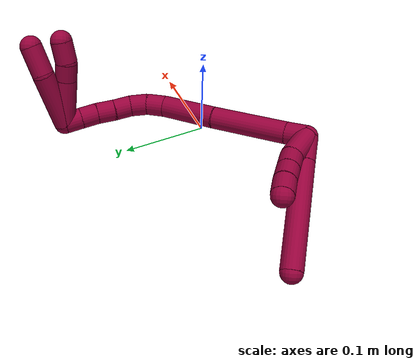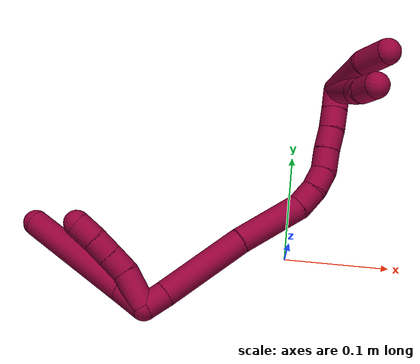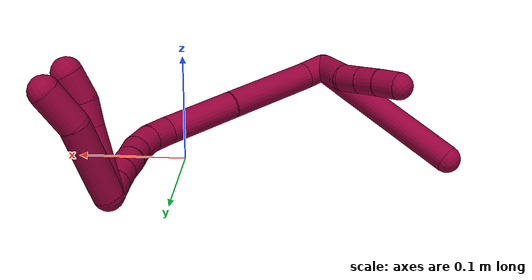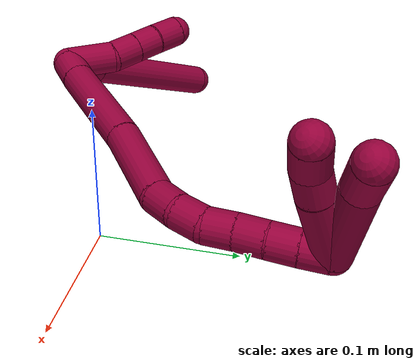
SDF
<sdf version="1.7">
 <world name="default">
  <model name="8">
   <static>0</static>
   <link name="8">
    <collision name="collision-cylinder-e_1_2_8">
     <pose>-0.003197 0.004297 -0.013693 -2.83755 -0.21919 1.24571</pose>
     <geometry><cylinder><radius>0.0125</radius><length>0.029407</length></cylinder></geometry>
     <surface>
      <friction><ode><mu>1.16</mu><mu2>1.16</mu2><slip1>0</slip1><slip2>0</slip2></ode></friction>
      <contact><ode><kp>1e+06</kp><kd>1</kd><max_vel>0</max_vel><min_depth>0.001</min_depth></ode></contact>
     </surface>
    </collision>
    <visual name="visual-cylinder-e_1_2_8">
     <pose>-0.003197 0.004297 -0.013693 -2.83755 -0.21919 1.24571</pose>
     <geometry><cylinder><radius>0.0125</radius><length>0.029407</length></cylinder></geometry>
     <material><ambient>0.584314 0 0.227451 1</ambient></material>
    </visual>
    <collision name="collision-cylinder-e_2_8_6">
     <pose>-0.020014 0.025833 -0.083538 -2.84371 -0.227848 1.30294</pose>
     <geometry><cylinder><radius>0.0125</radius><length>0.120593</length></cylinder></geometry>
     <surface>
      <friction><ode><mu>1.16</mu><mu2>1.16</mu2><slip1>0</slip1><slip2>0</slip2></ode></friction>
      <contact><ode><kp>1e+06</kp><kd>1</kd><max_vel>0</max_vel><min_depth>0.001</min_depth></ode></contact>
     </surface>
    </collision>
    <visual name="visual-cylinder-e_2_8_6">
     <pose>-0.020014 0.025833 -0.083538 -2.84371 -0.227848 1.30294</pose>
     <geometry><cylinder><radius>0.0125</radius><length>0.120593</length></cylinder></geometry>
     <material><ambient>0.584314 0 0.227451 1</ambient></material>
    </visual>
    <collision name="collision-cylinder-e_1_2_9">
     <pose>-0.003566 0.013713 -0.011443 -2.26622 -0.197069 0.416374</pose>
     <geometry><cylinder><radius>0.0125</radius><length>0.036425</length></cylinder></geometry>
     <surface>
      <friction><ode><mu>1.16</mu><mu2>1.16</mu2><slip1>0</slip1><slip2>0</slip2></ode></friction>
      <contact><ode><kp>1e+06</kp><kd>1</kd><max_vel>0</max_vel><min_depth>0.001</min_depth></ode></contact>
     </surface>
    </collision>
    <visual name="visual-cylinder-e_1_2_9">
     <pose>-0.003566 0.013713 -0.011443 -2.26622 -0.197069 0.416374</pose>
     <geometry><cylinder><radius>0.0125</radius><length>0.036425</length></cylinder></geometry>
     <material><ambient>0.584314 0 0.227451 1</ambient></material>
    </visual>
    <collision name="collision-cylinder-e_2_9_10">
     <pose>-0.012201 0.034218 -0.029435 -2.33789 -0.492937 1.06902</pose>
     <geometry><cylinder><radius>0.0125</radius><length>0.021423</length></cylinder></geometry>
     <surface>
      <friction><ode><mu>1.16</mu><mu2>1.16</mu2><slip1>0</slip1><slip2>0</slip2></ode></friction>
      <contact><ode><kp>1e+06</kp><kd>1</kd><max_vel>0</max_vel><min_depth>0.001</min_depth></ode></contact>
     </surface>
    </collision>
    <visual name="visual-cylinder-e_2_9_10">
     <pose>-0.012201 0.034218 -0.029435 -2.33789 -0.492937 1.06902</pose>
     <geometry><cylinder><radius>0.0125</radius><length>0.021423</length></cylinder></geometry>
     <material><ambient>0.584314 0 0.227451 1</ambient></material>
    </visual>
    <collision name="collision-cylinder-e_3_10_11">
     <pose>-0.022107 0.047388 -0.042108 -2.33599 -0.500666 1.08097</pose>
     <geometry><cylinder><radius>0.0125</radius><length>0.020155</length></cylinder></geometry>
     <surface>
      <friction><ode><mu>1.16</mu><mu2>1.16</mu2><slip1>0</slip1><slip2>0</slip2></ode></friction>
      <contact><ode><kp>1e+06</kp><kd>1</kd><max_vel>0</max_vel><min_depth>0.001</min_depth></ode></contact>
     </surface>
    </collision>
    <visual name="visual-cylinder-e_3_10_11">
     <pose>-0.022107 0.047388 -0.042108 -2.33599 -0.500666 1.08097</pose>
     <geometry><cylinder><radius>0.0125</radius><length>0.020155</length></cylinder></geometry>
     <material><ambient>0.584314 0 0.227451 1</ambient></material>
    </visual>
    <collision name="collision-cylinder-e_4_11_5">
     <pose>-0.032385 0.05995 -0.055519 -2.43781 -0.517462 1.24912</pose>
     <geometry><cylinder><radius>0.0125</radius><length>0.021998</length></cylinder></geometry>
     <surface>
      <friction><ode><mu>1.16</mu><mu2>1.16</mu2><slip1>0</slip1><slip2>0</slip2></ode></friction>
      <contact><ode><kp>1e+06</kp><kd>1</kd><max_vel>0</max_vel><min_depth>0.001</min_depth></ode></contact>
     </surface>
    </collision>
    <visual name="visual-cylinder-e_4_11_5">
     <pose>-0.032385 0.05995 -0.055519 -2.43781 -0.517462 1.24912</pose>
     <geometry><cylinder><radius>0.0125</radius><length>0.021998</length></cylinder></geometry>
     <material><ambient>0.584314 0 0.227451 1</ambient></material>
    </visual>
    <collision name="collision-cylinder-e_1_2_12">
     <pose>0.009997 0.005583 0.001539 -1.30186 1.04578 -0.827393</pose>
     <geometry><cylinder><radius>0.0125</radius><length>0.023107</length></cylinder></geometry>
     <surface>
      <friction><ode><mu>1.16</mu><mu2>1.16</mu2><slip1>0</slip1><slip2>0</slip2></ode></friction>
      <contact><ode><kp>1e+06</kp><kd>1</kd><max_vel>0</max_vel><min_depth>0.001</min_depth></ode></contact>
     </surface>
    </collision>
    <visual name="visual-cylinder-e_1_2_12">
     <pose>0.009997 0.005583 0.001539 -1.30186 1.04578 -0.827393</pose>
     <geometry><cylinder><radius>0.0125</radius><length>0.023107</length></cylinder></geometry>
     <material><ambient>0.584314 0 0.227451 1</ambient></material>
    </visual>
    <collision name="collision-cylinder-e_2_12_13">
     <pose>0.055709 0.034657 0.009947 -1.28631 0.969987 -0.752284</pose>
     <geometry><cylinder><radius>0.0125</radius><length>0.086592</length></cylinder></geometry>
     <surface>
      <friction><ode><mu>1.16</mu><mu2>1.16</mu2><slip1>0</slip1><slip2>0</slip2></ode></friction>
      <contact><ode><kp>1e+06</kp><kd>1</kd><max_vel>0</max_vel><min_depth>0.001</min_depth></ode></contact>
     </surface>
    </collision>
    <visual name="visual-cylinder-e_2_12_13">
     <pose>0.055709 0.034657 0.009947 -1.28631 0.969987 -0.752284</pose>
     <geometry><cylinder><radius>0.0125</radius><length>0.086592</length></cylinder></geometry>
     <material><ambient>0.584314 0 0.227451 1</ambient></material>
    </visual>
    <collision name="collision-cylinder-e_3_13_14">
     <pose>0.12027 0.073487 0.022724 -1.20314 1.05291 -0.759177</pose>
     <geometry><cylinder><radius>0.0125</radius><length>0.066403</length></cylinder></geometry>
     <surface>
      <friction><ode><mu>1.16</mu><mu2>1.16</mu2><slip1>0</slip1><slip2>0</slip2></ode></friction>
      <contact><ode><kp>1e+06</kp><kd>1</kd><max_vel>0</max_vel><min_depth>0.001</min_depth></ode></contact>
     </surface>
    </collision>
    <visual name="visual-cylinder-e_3_13_14">
     <pose>0.12027 0.073487 0.022724 -1.20314 1.05291 -0.759177</pose>
     <geometry><cylinder><radius>0.0125</radius><length>0.066403</length></cylinder></geometry>
     <material><ambient>0.584314 0 0.227451 1</ambient></material>
    </visual>
    <collision name="collision-cylinder-e_4_14_15">
     <pose>0.156761 0.096675 0.029342 -1.48059 0.77 -0.709154</pose>
     <geometry><cylinder><radius>0.0125</radius><length>0.021959</length></cylinder></geometry>
     <surface>
      <friction><ode><mu>1.16</mu><mu2>1.16</mu2><slip1>0</slip1><slip2>0</slip2></ode></friction>
      <contact><ode><kp>1e+06</kp><kd>1</kd><max_vel>0</max_vel><min_depth>0.001</min_depth></ode></contact>
     </surface>
    </collision>
    <visual name="visual-cylinder-e_4_14_15">
     <pose>0.156761 0.096675 0.029342 -1.48059 0.77 -0.709154</pose>
     <geometry><cylinder><radius>0.0125</radius><length>0.021959</length></cylinder></geometry>
     <material><ambient>0.584314 0 0.227451 1</ambient></material>
    </visual>
    <collision name="collision-cylinder-e_5_15_16">
     <pose>0.170682 0.112507 0.028423 -1.77214 0.656543 -0.790378</pose>
     <geometry><cylinder><radius>0.0125</radius><length>0.020569</length></cylinder></geometry>
     <surface>
      <friction><ode><mu>1.16</mu><mu2>1.16</mu2><slip1>0</slip1><slip2>0</slip2></ode></friction>
      <contact><ode><kp>1e+06</kp><kd>1</kd><max_vel>0</max_vel><min_depth>0.001</min_depth></ode></contact>
     </surface>
    </collision>
    <visual name="visual-cylinder-e_5_15_16">
     <pose>0.170682 0.112507 0.028423 -1.77214 0.656543 -0.790378</pose>
     <geometry><cylinder><radius>0.0125</radius><length>0.020569</length></cylinder></geometry>
     <material><ambient>0.584314 0 0.227451 1</ambient></material>
    </visual>
    <collision name="collision-cylinder-e_6_16_17">
     <pose>0.180483 0.129523 0.023409 -1.92924 0.350266 -0.499816</pose>
     <geometry><cylinder><radius>0.0125</radius><length>0.020542</length></cylinder></geometry>
     <surface>
      <friction><ode><mu>1.16</mu><mu2>1.16</mu2><slip1>0</slip1><slip2>0</slip2></ode></friction>
      <contact><ode><kp>1e+06</kp><kd>1</kd><max_vel>0</max_vel><min_depth>0.001</min_depth></ode></contact>
     </surface>
    </collision>
    <visual name="visual-cylinder-e_6_16_17">
     <pose>0.180483 0.129523 0.023409 -1.92924 0.350266 -0.499816</pose>
     <geometry><cylinder><radius>0.0125</radius><length>0.020542</length></cylinder></geometry>
     <material><ambient>0.584314 0 0.227451 1</ambient></material>
    </visual>
    <collision name="collision-cylinder-e_7_17_18">
     <pose>0.188202 0.147582 0.017259 -1.86815 0.418158 -0.558863</pose>
     <geometry><cylinder><radius>0.0125</radius><length>0.020658</length></cylinder></geometry>
     <surface>
      <friction><ode><mu>1.16</mu><mu2>1.16</mu2><slip1>0</slip1><slip2>0</slip2></ode></friction>
      <contact><ode><kp>1e+06</kp><kd>1</kd><max_vel>0</max_vel><min_depth>0.001</min_depth></ode></contact>
     </surface>
    </collision>
    <visual name="visual-cylinder-e_7_17_18">
     <pose>0.188202 0.147582 0.017259 -1.86815 0.418158 -0.558863</pose>
     <geometry><cylinder><radius>0.0125</radius><length>0.020658</length></cylinder></geometry>
     <material><ambient>0.584314 0 0.227451 1</ambient></material>
    </visual>
    <collision name="collision-cylinder-e_8_18_19">
     <pose>0.196095 0.165182 0.010882 -1.96937 0.378285 -0.561427</pose>
     <geometry><cylinder><radius>0.0125</radius><length>0.020025</length></cylinder></geometry>
     <surface>
      <friction><ode><mu>1.16</mu><mu2>1.16</mu2><slip1>0</slip1><slip2>0</slip2></ode></friction>
      <contact><ode><kp>1e+06</kp><kd>1</kd><max_vel>0</max_vel><min_depth>0.001</min_depth></ode></contact>
     </surface>
    </collision>
    <visual name="visual-cylinder-e_8_18_19">
     <pose>0.196095 0.165182 0.010882 -1.96937 0.378285 -0.561427</pose>
     <geometry><cylinder><radius>0.0125</radius><length>0.020025</length></cylinder></geometry>
     <material><ambient>0.584314 0 0.227451 1</ambient></material>
    </visual>
    <collision name="collision-cylinder-e_9_19_1">
     <pose>0.203172 0.182488 0.003553 -1.97337 0.342118 -0.511203</pose>
     <geometry><cylinder><radius>0.0125</radius><length>0.020146</length></cylinder></geometry>
     <surface>
      <friction><ode><mu>1.16</mu><mu2>1.16</mu2><slip1>0</slip1><slip2>0</slip2></ode></friction>
      <contact><ode><kp>1e+06</kp><kd>1</kd><max_vel>0</max_vel><min_depth>0.001</min_depth></ode></contact>
     </surface>
    </collision>
    <visual name="visual-cylinder-e_9_19_1">
     <pose>0.203172 0.182488 0.003553 -1.97337 0.342118 -0.511203</pose>
     <geometry><cylinder><radius>0.0125</radius><length>0.020146</length></cylinder></geometry>
     <material><ambient>0.584314 0 0.227451 1</ambient></material>
    </visual>
    <collision name="collision-cylinder-e_1_1_20">
     <pose>0.196317 0.19693 0.024401 -0.228453 -0.385501 0.044775</pose>
     <geometry><cylinder><radius>0.0125</radius><length>0.054435</length></cylinder></geometry>
     <surface>
      <friction><ode><mu>1.16</mu><mu2>1.16</mu2><slip1>0</slip1><slip2>0</slip2></ode></friction>
      <contact><ode><kp>1e+06</kp><kd>1</kd><max_vel>0</max_vel><min_depth>0.001</min_depth></ode></contact>
     </surface>
    </collision>
    <visual name="visual-cylinder-e_1_1_20">
     <pose>0.196317 0.19693 0.024401 -0.228453 -0.385501 0.044775</pose>
     <geometry><cylinder><radius>0.0125</radius><length>0.054435</length></cylinder></geometry>
     <material><ambient>0.584314 0 0.227451 1</ambient></material>
    </visual>
    <collision name="collision-cylinder-e_2_20_21">
     <pose>0.181631 0.205256 0.057895 -0.284801 -0.44617 0.065028</pose>
     <geometry><cylinder><radius>0.0125</radius><length>0.020629</length></cylinder></geometry>
     <surface>
      <friction><ode><mu>1.16</mu><mu2>1.16</mu2><slip1>0</slip1><slip2>0</slip2></ode></friction>
      <contact><ode><kp>1e+06</kp><kd>1</kd><max_vel>0</max_vel><min_depth>0.001</min_depth></ode></contact>
     </surface>
    </collision>
    <visual name="visual-cylinder-e_2_20_21">
     <pose>0.181631 0.205256 0.057895 -0.284801 -0.44617 0.065028</pose>
     <geometry><cylinder><radius>0.0125</radius><length>0.020629</length></cylinder></geometry>
     <material><ambient>0.584314 0 0.227451 1</ambient></material>
    </visual>
    <collision name="collision-cylinder-e_3_21_4">
     <pose>0.174912 0.212941 0.077987 -0.426431 -0.18293 0.039711</pose>
     <geometry><cylinder><radius>0.0125</radius><length>0.024936</length></cylinder></geometry>
     <surface>
      <friction><ode><mu>1.16</mu><mu2>1.16</mu2><slip1>0</slip1><slip2>0</slip2></ode></friction>
      <contact><ode><kp>1e+06</kp><kd>1</kd><max_vel>0</max_vel><min_depth>0.001</min_depth></ode></contact>
     </surface>
    </collision>
    <visual name="visual-cylinder-e_3_21_4">
     <pose>0.174912 0.212941 0.077987 -0.426431 -0.18293 0.039711</pose>
     <geometry><cylinder><radius>0.0125</radius><length>0.024936</length></cylinder></geometry>
     <material><ambient>0.584314 0 0.227451 1</ambient></material>
    </visual>
    <collision name="collision-cylinder-e_1_1_22">
     <pose>0.198131 0.210371 0.025426 -0.6425 -0.257579 0.08614</pose>
     <geometry><cylinder><radius>0.0125</radius><length>0.06611</length></cylinder></geometry>
     <surface>
      <friction><ode><mu>1.16</mu><mu2>1.16</mu2><slip1>0</slip1><slip2>0</slip2></ode></friction>
      <contact><ode><kp>1e+06</kp><kd>1</kd><max_vel>0</max_vel><min_depth>0.001</min_depth></ode></contact>
     </surface>
    </collision>
    <visual name="visual-cylinder-e_1_1_22">
     <pose>0.198131 0.210371 0.025426 -0.6425 -0.257579 0.08614</pose>
     <geometry><cylinder><radius>0.0125</radius><length>0.06611</length></cylinder></geometry>
     <material><ambient>0.584314 0 0.227451 1</ambient></material>
    </visual>
    <collision name="collision-cylinder-e_2_22_3">
     <pose>0.189936 0.237818 0.065792 -0.51148 0.013311 -0.00348</pose>
     <geometry><cylinder><radius>0.0125</radius><length>0.03389</length></cylinder></geometry>
     <surface>
      <friction><ode><mu>1.16</mu><mu2>1.16</mu2><slip1>0</slip1><slip2>0</slip2></ode></friction>
      <contact><ode><kp>1e+06</kp><kd>1</kd><max_vel>0</max_vel><min_depth>0.001</min_depth></ode></contact>
     </surface>
    </collision>
    <visual name="visual-cylinder-e_2_22_3">
     <pose>0.189936 0.237818 0.065792 -0.51148 0.013311 -0.00348</pose>
     <geometry><cylinder><radius>0.0125</radius><length>0.03389</length></cylinder></geometry>
     <material><ambient>0.584314 0 0.227451 1</ambient></material>
    </visual>
    <collision name="collision-sphere-3">
     <pose>0.190161 0.246111 0.080567 0 -0 0</pose>
     <geometry><sphere><radius>0.0125</radius></sphere></geometry>
     <surface>
      <friction><ode><mu>1.16</mu><mu2>1.16</mu2><slip1>0</slip1><slip2>0</slip2></ode></friction>
      <contact><ode><kp>1e+06</kp><kd>1</kd><max_vel>0</max_vel><min_depth>0.001</min_depth></ode></contact>
     </surface>
    </collision>
    <visual name="visual-sphere-3">
     <pose>0.190161 0.246111 0.080567 0 -0 0</pose>
     <geometry><sphere><radius>0.0125</radius></sphere></geometry>
     <material><ambient>0.584314 0 0.227451 1</ambient></material>
    </visual>
    <collision name="collision-sphere-22">
     <pose>0.18971 0.229524 0.051017 0 -0 0</pose>
     <geometry><sphere><radius>0.0125</radius></sphere></geometry>
     <surface>
      <friction><ode><mu>1.16</mu><mu2>1.16</mu2><slip1>0</slip1><slip2>0</slip2></ode></friction>
      <contact><ode><kp>1e+06</kp><kd>1</kd><max_vel>0</max_vel><min_depth>0.001</min_depth></ode></contact>
     </surface>
    </collision>
    <visual name="visual-sphere-22">
     <pose>0.18971 0.229524 0.051017 0 -0 0</pose>
     <geometry><sphere><radius>0.0125</radius></sphere></geometry>
     <material><ambient>0.584314 0 0.227451 1</ambient></material>
    </visual>
    <collision name="collision-sphere-4">
     <pose>0.172644 0.218012 0.089149 0 -0 0</pose>
     <geometry><sphere><radius>0.0125</radius></sphere></geometry>
     <surface>
      <friction><ode><mu>1.16</mu><mu2>1.16</mu2><slip1>0</slip1><slip2>0</slip2></ode></friction>
      <contact><ode><kp>1e+06</kp><kd>1</kd><max_vel>0</max_vel><min_depth>0.001</min_depth></ode></contact>
     </surface>
    </collision>
    <visual name="visual-sphere-4">
     <pose>0.172644 0.218012 0.089149 0 -0 0</pose>
     <geometry><sphere><radius>0.0125</radius></sphere></geometry>
     <material><ambient>0.584314 0 0.227451 1</ambient></material>
    </visual>
    <collision name="collision-sphere-21">
     <pose>0.17718 0.20787 0.066825 0 -0 0</pose>
     <geometry><sphere><radius>0.0125</radius></sphere></geometry>
     <surface>
      <friction><ode><mu>1.16</mu><mu2>1.16</mu2><slip1>0</slip1><slip2>0</slip2></ode></friction>
      <contact><ode><kp>1e+06</kp><kd>1</kd><max_vel>0</max_vel><min_depth>0.001</min_depth></ode></contact>
     </surface>
    </collision>
    <visual name="visual-sphere-21">
     <pose>0.17718 0.20787 0.066825 0 -0 0</pose>
     <geometry><sphere><radius>0.0125</radius></sphere></geometry>
     <material><ambient>0.584314 0 0.227451 1</ambient></material>
    </visual>
    <collision name="collision-sphere-20">
     <pose>0.186082 0.202642 0.048965 0 -0 0</pose>
     <geometry><sphere><radius>0.0125</radius></sphere></geometry>
     <surface>
      <friction><ode><mu>1.16</mu><mu2>1.16</mu2><slip1>0</slip1><slip2>0</slip2></ode></friction>
      <contact><ode><kp>1e+06</kp><kd>1</kd><max_vel>0</max_vel><min_depth>0.001</min_depth></ode></contact>
     </surface>
    </collision>
    <visual name="visual-sphere-20">
     <pose>0.186082 0.202642 0.048965 0 -0 0</pose>
     <geometry><sphere><radius>0.0125</radius></sphere></geometry>
     <material><ambient>0.584314 0 0.227451 1</ambient></material>
    </visual>
    <collision name="collision-sphere-11">
     <pose>-0.026944 0.053764 -0.048232 0 -0 0</pose>
     <geometry><sphere><radius>0.0125</radius></sphere></geometry>
     <surface>
      <friction><ode><mu>1.16</mu><mu2>1.16</mu2><slip1>0</slip1><slip2>0</slip2></ode></friction>
      <contact><ode><kp>1e+06</kp><kd>1</kd><max_vel>0</max_vel><min_depth>0.001</min_depth></ode></contact>
     </surface>
    </collision>
    <visual name="visual-sphere-11">
     <pose>-0.026944 0.053764 -0.048232 0 -0 0</pose>
     <geometry><sphere><radius>0.0125</radius></sphere></geometry>
     <material><ambient>0.584314 0 0.227451 1</ambient></material>
    </visual>
    <collision name="collision-sphere-10">
     <pose>-0.017269 0.041012 -0.035984 0 -0 0</pose>
     <geometry><sphere><radius>0.0125</radius></sphere></geometry>
     <surface>
      <friction><ode><mu>1.16</mu><mu2>1.16</mu2><slip1>0</slip1><slip2>0</slip2></ode></friction>
      <contact><ode><kp>1e+06</kp><kd>1</kd><max_vel>0</max_vel><min_depth>0.001</min_depth></ode></contact>
     </surface>
    </collision>
    <visual name="visual-sphere-10">
     <pose>-0.017269 0.041012 -0.035984 0 -0 0</pose>
     <geometry><sphere><radius>0.0125</radius></sphere></geometry>
     <material><ambient>0.584314 0 0.227451 1</ambient></material>
    </visual>
    <collision name="collision-sphere-6">
     <pose>-0.033634 0.043072 -0.139689 0 -0 0</pose>
     <geometry><sphere><radius>0.0125</radius></sphere></geometry>
     <surface>
      <friction><ode><mu>1.16</mu><mu2>1.16</mu2><slip1>0</slip1><slip2>0</slip2></ode></friction>
      <contact><ode><kp>1e+06</kp><kd>1</kd><max_vel>0</max_vel><min_depth>0.001</min_depth></ode></contact>
     </surface>
    </collision>
    <visual name="visual-sphere-6">
     <pose>-0.033634 0.043072 -0.139689 0 -0 0</pose>
     <geometry><sphere><radius>0.0125</radius></sphere></geometry>
     <material><ambient>0.584314 0 0.227451 1</ambient></material>
    </visual>
    <collision name="collision-sphere-9">
     <pose>-0.007132 0.027425 -0.022886 0 -0 0</pose>
     <geometry><sphere><radius>0.0125</radius></sphere></geometry>
     <surface>
      <friction><ode><mu>1.16</mu><mu2>1.16</mu2><slip1>0</slip1><slip2>0</slip2></ode></friction>
      <contact><ode><kp>1e+06</kp><kd>1</kd><max_vel>0</max_vel><min_depth>0.001</min_depth></ode></contact>
     </surface>
    </collision>
    <visual name="visual-sphere-9">
     <pose>-0.007132 0.027425 -0.022886 0 -0 0</pose>
     <geometry><sphere><radius>0.0125</radius></sphere></geometry>
     <material><ambient>0.584314 0 0.227451 1</ambient></material>
    </visual>
    <collision name="collision-sphere-2">
     <geometry><sphere><radius>0.0125</radius></sphere></geometry>
     <surface>
      <friction><ode><mu>1.16</mu><mu2>1.16</mu2><slip1>0</slip1><slip2>0</slip2></ode></friction>
      <contact><ode><kp>1e+06</kp><kd>1</kd><max_vel>0</max_vel><min_depth>0.001</min_depth></ode></contact>
     </surface>
    </collision>
    <visual name="visual-sphere-2">
     <geometry><sphere><radius>0.0125</radius></sphere></geometry>
     <material><ambient>0.584314 0 0.227451 1</ambient></material>
    </visual>
    <collision name="collision-sphere-19">
     <pose>0.199792 0.173757 0.007271 0 -0 0</pose>
     <geometry><sphere><radius>0.0125</radius></sphere></geometry>
     <surface>
      <friction><ode><mu>1.16</mu><mu2>1.16</mu2><slip1>0</slip1><slip2>0</slip2></ode></friction>
      <contact><ode><kp>1e+06</kp><kd>1</kd><max_vel>0</max_vel><min_depth>0.001</min_depth></ode></contact>
     </surface>
    </collision>
    <visual name="visual-sphere-19">
     <pose>0.199792 0.173757 0.007271 0 -0 0</pose>
     <geometry><sphere><radius>0.0125</radius></sphere></geometry>
     <material><ambient>0.584314 0 0.227451 1</ambient></material>
    </visual>
    <collision name="collision-sphere-8">
     <pose>-0.006394 0.008593 -0.027387 0 -0 0</pose>
     <geometry><sphere><radius>0.0125</radius></sphere></geometry>
     <surface>
      <friction><ode><mu>1.16</mu><mu2>1.16</mu2><slip1>0</slip1><slip2>0</slip2></ode></friction>
      <contact><ode><kp>1e+06</kp><kd>1</kd><max_vel>0</max_vel><min_depth>0.001</min_depth></ode></contact>
     </surface>
    </collision>
    <visual name="visual-sphere-8">
     <pose>-0.006394 0.008593 -0.027387 0 -0 0</pose>
     <geometry><sphere><radius>0.0125</radius></sphere></geometry>
     <material><ambient>0.584314 0 0.227451 1</ambient></material>
    </visual>
    <collision name="collision-sphere-5">
     <pose>-0.037826 0.066135 -0.062807 0 -0 0</pose>
     <geometry><sphere><radius>0.0125</radius></sphere></geometry>
     <surface>
      <friction><ode><mu>1.16</mu><mu2>1.16</mu2><slip1>0</slip1><slip2>0</slip2></ode></friction>
      <contact><ode><kp>1e+06</kp><kd>1</kd><max_vel>0</max_vel><min_depth>0.001</min_depth></ode></contact>
     </surface>
    </collision>
    <visual name="visual-sphere-5">
     <pose>-0.037826 0.066135 -0.062807 0 -0 0</pose>
     <geometry><sphere><radius>0.0125</radius></sphere></geometry>
     <material><ambient>0.584314 0 0.227451 1</ambient></material>
    </visual>
    <collision name="collision-sphere-12">
     <pose>0.019995 0.011165 0.003077 0 -0 0</pose>
     <geometry><sphere><radius>0.0125</radius></sphere></geometry>
     <surface>
      <friction><ode><mu>1.16</mu><mu2>1.16</mu2><slip1>0</slip1><slip2>0</slip2></ode></friction>
      <contact><ode><kp>1e+06</kp><kd>1</kd><max_vel>0</max_vel><min_depth>0.001</min_depth></ode></contact>
     </surface>
    </collision>
    <visual name="visual-sphere-12">
     <pose>0.019995 0.011165 0.003077 0 -0 0</pose>
     <geometry><sphere><radius>0.0125</radius></sphere></geometry>
     <material><ambient>0.584314 0 0.227451 1</ambient></material>
    </visual>
    <collision name="collision-sphere-13">
     <pose>0.091423 0.058149 0.016816 0 -0 0</pose>
     <geometry><sphere><radius>0.0125</radius></sphere></geometry>
     <surface>
      <friction><ode><mu>1.16</mu><mu2>1.16</mu2><slip1>0</slip1><slip2>0</slip2></ode></friction>
      <contact><ode><kp>1e+06</kp><kd>1</kd><max_vel>0</max_vel><min_depth>0.001</min_depth></ode></contact>
     </surface>
    </collision>
    <visual name="visual-sphere-13">
     <pose>0.091423 0.058149 0.016816 0 -0 0</pose>
     <geometry><sphere><radius>0.0125</radius></sphere></geometry>
     <material><ambient>0.584314 0 0.227451 1</ambient></material>
    </visual>
    <collision name="collision-sphere-14">
     <pose>0.149118 0.088825 0.028632 0 -0 0</pose>
     <geometry><sphere><radius>0.0125</radius></sphere></geometry>
     <surface>
      <friction><ode><mu>1.16</mu><mu2>1.16</mu2><slip1>0</slip1><slip2>0</slip2></ode></friction>
      <contact><ode><kp>1e+06</kp><kd>1</kd><max_vel>0</max_vel><min_depth>0.001</min_depth></ode></contact>
     </surface>
    </collision>
    <visual name="visual-sphere-14">
     <pose>0.149118 0.088825 0.028632 0 -0 0</pose>
     <geometry><sphere><radius>0.0125</radius></sphere></geometry>
     <material><ambient>0.584314 0 0.227451 1</ambient></material>
    </visual>
    <collision name="collision-sphere-15">
     <pose>0.164404 0.104525 0.030052 0 -0 0</pose>
     <geometry><sphere><radius>0.0125</radius></sphere></geometry>
     <surface>
      <friction><ode><mu>1.16</mu><mu2>1.16</mu2><slip1>0</slip1><slip2>0</slip2></ode></friction>
      <contact><ode><kp>1e+06</kp><kd>1</kd><max_vel>0</max_vel><min_depth>0.001</min_depth></ode></contact>
     </surface>
    </collision>
    <visual name="visual-sphere-15">
     <pose>0.164404 0.104525 0.030052 0 -0 0</pose>
     <geometry><sphere><radius>0.0125</radius></sphere></geometry>
     <material><ambient>0.584314 0 0.227451 1</ambient></material>
    </visual>
    <collision name="collision-sphere-16">
     <pose>0.176959 0.120489 0.026794 0 -0 0</pose>
     <geometry><sphere><radius>0.0125</radius></sphere></geometry>
     <surface>
      <friction><ode><mu>1.16</mu><mu2>1.16</mu2><slip1>0</slip1><slip2>0</slip2></ode></friction>
      <contact><ode><kp>1e+06</kp><kd>1</kd><max_vel>0</max_vel><min_depth>0.001</min_depth></ode></contact>
     </surface>
    </collision>
    <visual name="visual-sphere-16">
     <pose>0.176959 0.120489 0.026794 0 -0 0</pose>
     <geometry><sphere><radius>0.0125</radius></sphere></geometry>
     <material><ambient>0.584314 0 0.227451 1</ambient></material>
    </visual>
    <collision name="collision-sphere-17">
     <pose>0.184008 0.138557 0.020024 0 -0 0</pose>
     <geometry><sphere><radius>0.0125</radius></sphere></geometry>
     <surface>
      <friction><ode><mu>1.16</mu><mu2>1.16</mu2><slip1>0</slip1><slip2>0</slip2></ode></friction>
      <contact><ode><kp>1e+06</kp><kd>1</kd><max_vel>0</max_vel><min_depth>0.001</min_depth></ode></contact>
     </surface>
    </collision>
    <visual name="visual-sphere-17">
     <pose>0.184008 0.138557 0.020024 0 -0 0</pose>
     <geometry><sphere><radius>0.0125</radius></sphere></geometry>
     <material><ambient>0.584314 0 0.227451 1</ambient></material>
    </visual>
    <collision name="collision-sphere-18">
     <pose>0.192397 0.156607 0.014493 0 -0 0</pose>
     <geometry><sphere><radius>0.0125</radius></sphere></geometry>
     <surface>
      <friction><ode><mu>1.16</mu><mu2>1.16</mu2><slip1>0</slip1><slip2>0</slip2></ode></friction>
      <contact><ode><kp>1e+06</kp><kd>1</kd><max_vel>0</max_vel><min_depth>0.001</min_depth></ode></contact>
     </surface>
    </collision>
    <visual name="visual-sphere-18">
     <pose>0.192397 0.156607 0.014493 0 -0 0</pose>
     <geometry><sphere><radius>0.0125</radius></sphere></geometry>
     <material><ambient>0.584314 0 0.227451 1</ambient></material>
    </visual>
    <collision name="collision-sphere-1">
     <pose>0.206551 0.191218 -0.000164 0 -0 0</pose>
     <geometry><sphere><radius>0.0125</radius></sphere></geometry>
     <surface>
      <friction><ode><mu>1.16</mu><mu2>1.16</mu2><slip1>0</slip1><slip2>0</slip2></ode></friction>
      <contact><ode><kp>1e+06</kp><kd>1</kd><max_vel>0</max_vel><min_depth>0.001</min_depth></ode></contact>
     </surface>
    </collision>
    <visual name="visual-sphere-1">
     <pose>0.206551 0.191218 -0.000164 0 -0 0</pose>
     <geometry><sphere><radius>0.0125</radius></sphere></geometry>
     <material><ambient>0.584314 0 0.227451 1</ambient></material>
    </visual>
    <inertial>
     <pose>0.093177 0.098826 -0.000606 0 -0 0</pose>
     <mass>0.75</mass>
     <inertia>
      <ixx>0.000259</ixx>
      <ixy>0</ixy>
      <ixz>0</ixz>
      <iyy>0.000226</iyy>
      <iyz>0</iyz>
      <izz>-0.000153</izz>
     </inertia>
    </inertial>
   </link>
   <pose>-0.126108 -0.0658 0.071046 0.573421 0.602915 0.342657</pose>
  </model>
 </world>
</sdf>
